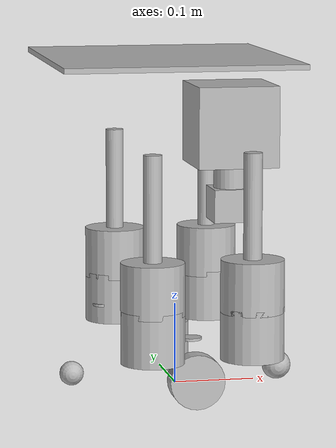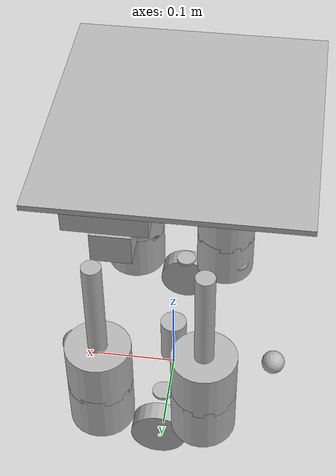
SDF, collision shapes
<?xml version="1.0" ?>
<sdf version="1.5">
  <model name="turtlebot_with_sensors_b">
    <link name="rack">
      <inertial>
        <pose>0.001453 -0.000453 0.029787 0 0 0</pose>
        <inertia>
          <ixx>0.058640</ixx>
          <ixy>0.000124</ixy>
          <ixz>0.000615</ixz>
          <iyy>0.058786</iyy>
          <iyz>0.000014</iyz>
          <izz>1.532440</izz>
        </inertia>
        <mass>2.234000</mass>
      </inertial>
      <visual name="plate_0_visual">
        <pose>-0.043340 0 0.084757 0 0 0</pose>
        <geometry>
          <mesh>
            <uri>model://turtlebot_with_sensors/meshes/plate_0_logo_b.dae</uri>
          </mesh>
        </geometry>
      </visual>
      <visual name="plate_1_visual">
        <pose>-0.002660 0 0.141907 0 0 0</pose>
        <geometry>
          <mesh>
            <uri>model://turtlebot_with_sensors/meshes/plate_1_logo_b.dae</uri>
          </mesh>
        </geometry>
      </visual>
      <visual name="plate_2_visual">
        <pose>-0.002660 0 0.199108 0 0 0</pose>
        <geometry>
          <mesh>
            <uri>model://turtlebot_with_sensors/meshes/plate_1_logo_b.dae</uri>
          </mesh>
        </geometry>
      </visual>
      <collision name="plate_3_collision">
        <pose>-0.015820 0 0.405457 0 0 0</pose>
        <geometry>
          <box>
            <size>0.288000 0.315000 0.006401</size>
          </box>
        </geometry>
      </collision>
      <visual name="plate_3_visual">
        <pose>-0.015820 0 0.405457 0 0 0</pose>
        <geometry>
          <mesh>
            <uri>model://turtlebot_with_sensors/meshes/plate_2_logo_b.dae</uri>
          </mesh>
        </geometry>
      </visual>
      <collision name="spacer_0_collision">
        <pose>-0.002540 0.111468 0.079992 0 0 0</pose>
        <geometry>
          <cylinder>
            <radius>0.012700</radius>
            <length>0.003175</length>
          </cylinder>
        </geometry>
      </collision>
      <visual name="spacer_0_visual">
        <pose>-0.002540 0.111468 0.079992 0 0 0</pose>
        <geometry>
          <mesh>
            <uri>model://turtlebot_with_sensors/meshes/68-02403-125_Spacer.dae</uri>
          </mesh>
        </geometry>
      </visual>
      <collision name="spacer_1_collision">
        <pose>-0.002540 -0.111468 0.079992 0 0 0</pose>
        <geometry>
          <cylinder>
            <radius>0.012700</radius>
            <length>0.003175</length>
          </cylinder>
        </geometry>
      </collision>
      <visual name="spacer_1_visual">
        <pose>-0.002540 -0.111468 0.079992 0 0 0</pose>
        <geometry>
          <mesh>
            <uri>model://turtlebot_with_sensors/meshes/68-02403-125_Spacer.dae</uri>
          </mesh>
        </geometry>
      </visual>
      <collision name="spacer_2_collision">
        <pose>-0.072390 -0.111468 0.079992 0 0 0</pose>
        <geometry>
          <cylinder>
            <radius>0.012700</radius>
            <length>0.003175</length>
          </cylinder>
        </geometry>
      </collision>
      <visual name="spacer_2_visual">
        <pose>-0.072390 -0.111468 0.079992 0 0 0</pose>
        <geometry>
          <mesh>
            <uri>model://turtlebot_with_sensors/meshes/68-02403-125_Spacer.dae</uri>
          </mesh>
        </geometry>
      </visual>
      <collision name="spacer_3_collision">
        <pose>-0.072390 0.111468 0.079992 0 0 0</pose>
        <geometry>
          <cylinder>
            <radius>0.012700</radius>
            <length>0.003175</length>
          </cylinder>
        </geometry>
      </collision>
      <visual name="spacer_3_visual">
        <pose>-0.072390 0.111468 0.079992 0 0 0</pose>
        <geometry>
          <mesh>
            <uri>model://turtlebot_with_sensors/meshes/68-02403-125_Spacer.dae</uri>
          </mesh>
        </geometry>
      </visual>
      <collision name="standoff_2in_0_collision">
        <pose>0.067640 0.131420 0.087980 0 0 0</pose>
        <geometry>
          <cylinder>
            <radius>0.038100</radius>
            <length>0.063500</length>
          </cylinder>
        </geometry>
      </collision>
      <visual name="standoff_2in_0_visual">
        <pose>0.067640 0.131420 0.087980 0 0 0</pose>
        <geometry>
          <mesh>
            <uri>model://turtlebot_with_sensors/meshes/68-04552-2000-RA_Turtlebot_M-F_Standoff.dae</uri>
          </mesh>
        </geometry>
      </visual>
      <collision name="standoff_2in_1_collision">
        <pose>0.067640 -0.131420 0.087980 0 0 0</pose>
        <geometry>
          <cylinder>
            <radius>0.038100</radius>
            <length>0.063500</length>
          </cylinder>
        </geometry>
      </collision>
      <visual name="standoff_2in_1_visual">
        <pose>0.067640 -0.131420 0.087980 0 0 0</pose>
        <geometry>
          <mesh>
            <uri>model://turtlebot_with_sensors/meshes/68-04552-2000-RA_Turtlebot_M-F_Standoff.dae</uri>
          </mesh>
        </geometry>
      </visual>
      <collision name="standoff_2in_2_collision">
        <pose>-0.052832 -0.131420 0.087980 0 0 0</pose>
        <geometry>
          <cylinder>
            <radius>0.038100</radius>
            <length>0.063500</length>
          </cylinder>
        </geometry>
      </collision>
      <visual name="standoff_2in_2_visual">
        <pose>-0.052832 -0.131420 0.087980 0 0 0</pose>
        <geometry>
          <mesh>
            <uri>model://turtlebot_with_sensors/meshes/68-04552-2000-RA_Turtlebot_M-F_Standoff.dae</uri>
          </mesh>
        </geometry>
      </visual>
      <collision name="standoff_2in_3_collision">
        <pose>-0.052832 0.131420 0.087980 0 0 0</pose>
        <geometry>
          <cylinder>
            <radius>0.038100</radius>
            <length>0.063500</length>
          </cylinder>
        </geometry>
      </collision>
      <visual name="standoff_2in_3_visual">
        <pose>-0.052832 0.131420 0.087980 0 0 0</pose>
        <geometry>
          <mesh>
            <uri>model://turtlebot_with_sensors/meshes/68-04552-2000-RA_Turtlebot_M-F_Standoff.dae</uri>
          </mesh>
        </geometry>
      </visual>
      <collision name="standoff_2in_4_collision">
        <pose>0.067640 0.131420 0.145130 0 0 0</pose>
        <geometry>
          <cylinder>
            <radius>0.038100</radius>
            <length>0.063500</length>
          </cylinder>
        </geometry>
      </collision>
      <visual name="standoff_2in_4_visual">
        <pose>0.067640 0.131420 0.145130 0 0 0</pose>
        <geometry>
          <mesh>
            <uri>model://turtlebot_with_sensors/meshes/68-04552-2000-RA_Turtlebot_M-F_Standoff.dae</uri>
          </mesh>
        </geometry>
      </visual>
      <collision name="standoff_2in_5_collision">
        <pose>0.067640 -0.131420 0.145130 0 0 0</pose>
        <geometry>
          <cylinder>
            <radius>0.038100</radius>
            <length>0.063500</length>
          </cylinder>
        </geometry>
      </collision>
      <visual name="standoff_2in_5_visual">
        <pose>0.067640 -0.131420 0.145130 0 0 0</pose>
        <geometry>
          <mesh>
            <uri>model://turtlebot_with_sensors/meshes/68-04552-2000-RA_Turtlebot_M-F_Standoff.dae</uri>
          </mesh>
        </geometry>
      </visual>
      <collision name="standoff_2in_6_collision">
        <pose>-0.052832 -0.131420 0.145130 0 0 0</pose>
        <geometry>
          <cylinder>
            <radius>0.038100</radius>
            <length>0.063500</length>
          </cylinder>
        </geometry>
      </collision>
      <visual name="standoff_2in_6_visual">
        <pose>-0.052832 -0.131420 0.145130 0 0 0</pose>
        <geometry>
          <mesh>
            <uri>model://turtlebot_with_sensors/meshes/68-04552-2000-RA_Turtlebot_M-F_Standoff.dae</uri>
          </mesh>
        </geometry>
      </visual>
      <collision name="standoff_2in_7_collision">
        <pose>-0.052832 0.131420 0.145130 0 0 0</pose>
        <geometry>
          <cylinder>
            <radius>0.038100</radius>
            <length>0.063500</length>
          </cylinder>
        </geometry>
      </collision>
      <visual name="standoff_2in_7_visual">
        <pose>-0.052832 0.131420 0.145130 0 0 0</pose>
        <geometry>
          <mesh>
            <uri>model://turtlebot_with_sensors/meshes/68-04552-2000-RA_Turtlebot_M-F_Standoff.dae</uri>
          </mesh>
        </geometry>
      </visual>
      <collision name="standoff_8in_0_collision">
        <pose>0.067640 0.131420 0.202280 0 0 0</pose>
        <geometry>
          <cylinder>
            <radius>0.011113</radius>
            <length>0.203200</length>
          </cylinder>
        </geometry>
      </collision>
      <visual name="standoff_8in_0_visual">
        <pose>0.067640 0.131420 0.202280 0 0 0</pose>
        <geometry>
          <mesh>
            <uri>model://turtlebot_with_sensors/meshes/68-02421-8000-RA_Turtlebot_F-F_Standoff.dae</uri>
          </mesh>
        </geometry>
      </visual>
      <collision name="standoff_8in_1_collision">
        <pose>0.067640 -0.131420 0.202280 0 0 0</pose>
        <geometry>
          <cylinder>
            <radius>0.011113</radius>
            <length>0.203200</length>
          </cylinder>
        </geometry>
      </collision>
      <visual name="standoff_8in_1_visual">
        <pose>0.067640 -0.131420 0.202280 0 0 0</pose>
        <geometry>
          <mesh>
            <uri>model://turtlebot_with_sensors/meshes/68-02421-8000-RA_Turtlebot_F-F_Standoff.dae</uri>
          </mesh>
        </geometry>
      </visual>
      <collision name="standoff_8in_2_collision">
        <pose>-0.052832 -0.131420 0.202280 0 0 0</pose>
        <geometry>
          <cylinder>
            <radius>0.011113</radius>
            <length>0.203200</length>
          </cylinder>
        </geometry>
      </collision>
      <visual name="standoff_8in_2_visual">
        <pose>-0.052832 -0.131420 0.202280 0 0 0</pose>
        <geometry>
          <mesh>
            <uri>model://turtlebot_with_sensors/meshes/68-02421-8000-RA_Turtlebot_F-F_Standoff.dae</uri>
          </mesh>
        </geometry>
      </visual>
      <collision name="standoff_8in_3_collision">
        <pose>-0.052832 0.131420 0.202280 0 0 0</pose>
        <geometry>
          <cylinder>
            <radius>0.011113</radius>
            <length>0.203200</length>
          </cylinder>
        </geometry>
      </collision>
      <visual name="standoff_8in_3_visual">
        <pose>-0.052832 0.131420 0.202280 0 0 0</pose>
        <geometry>
          <mesh>
            <uri>model://turtlebot_with_sensors/meshes/68-02421-8000-RA_Turtlebot_F-F_Standoff.dae</uri>
          </mesh>
        </geometry>
      </visual>
<!-- IMU Sensor -->
      <sensor name="imu_sensor" type="imu">
        <pose>0 0 0 0 0 0</pose>
        <always_on>1</always_on>
        <update_rate>100</update_rate>
        <imu>
        </imu>
      </sensor>
<!-- GPS sensor copied from gazebo-5.0.1/test/worlds/gps_test.world -->
      <sensor name="gps" type="gps">
        <pose>0 0 0 0 0 0</pose>
        <update_rate>10.0</update_rate>
        <always_on>true</always_on>
        <gps>
          <position_sensing>
            <horizontal>
              <noise type="gaussian_quantized">
                <mean>0</mean>
                <stddev>1</stddev>
                <bias_mean>3</bias_mean>
                <bias_stddev>1</bias_stddev>
                <precision>0.5</precision>
              </noise>
            </horizontal>
            <vertical>
              <noise type="gaussian_quantized">
                <mean>0</mean>
                <stddev>1</stddev>
                <bias_mean>3</bias_mean>
                <bias_stddev>1</bias_stddev>
                <precision>1.0</precision>
              </noise>
            </vertical>
          </position_sensing>
          <velocity_sensing>
            <horizontal>
              <noise type="gaussian_quantized">
                <mean>0</mean>
                <stddev>0.1</stddev>
                <bias_mean>0.1</bias_mean>
                <bias_stddev>0.1</bias_stddev>
                <precision>0.1</precision>
              </noise>
            </horizontal>
            <vertical>
              <noise type="gaussian_quantized">
                <mean>0</mean>
                <stddev>0.2</stddev>
                <bias_mean>0.2</bias_mean>
                <bias_stddev>0.2</bias_stddev>
                <precision>0.2</precision>
              </noise>
            </vertical>
          </velocity_sensing>
        </gps>
      </sensor>
    </link>
<!-- Camera (hight is 100mm) -->
    <include>
      <name>camera</name>
      <pose>0.07 0 0.323 0 0 0</pose>
      <uri>model://camera_rc2016</uri>
    </include>
    <joint name="camera_joint" type="revolute">
      <parent>rack</parent>
      <child>camera::link</child>
      <pose>0 0 0 0 0 0</pose>
      <axis>
        <xyz>0.000000 0.000000 1.000000</xyz>
        <limit>
          <lower>0</lower>
          <upper>0</upper>
        </limit>
      </axis>
    </joint>
<!-- Hokuyo (hight is 70mm) -->
    <include>
      <name>hokuyo</name>
      <pose>0.07 0 0.238 0 0 0</pose>
      <uri>model://hokuyo_rc2016</uri>
    </include>
    <joint name="hokuyo_joint" type="revolute">
      <parent>rack</parent>
      <child>hokuyo::link</child>
      <pose>0 0 0 0 0 0</pose>
      <axis>
        <xyz>0.000000 0.000000 1.000000</xyz>
        <limit>
          <lower>0</lower>
          <upper>0</upper>
        </limit>
      </axis>
    </joint>
    <include>
      <uri>model://create_rc2016</uri>
    </include>
    <joint name="create_rack" type="revolute">
      <parent>create_rc2016::base</parent>
      <child>rack</child>
      <axis>
        <xyz>0 0 1</xyz>
        <limit>
          <lower>0</lower>
          <upper>0</upper>
        </limit>
        <use_parent_model_frame>true</use_parent_model_frame>
      </axis>
    </joint>
  </model>
</sdf>

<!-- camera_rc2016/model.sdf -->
<sdf version="1.5">
  <model name="camera_rc2016">
    <pose>0 0 0.05 0 0 0</pose>
    <link name="link">
      <inertial>
        <mass>0.1</mass>
        <inertia>
          <ixx>0.000166667</ixx>
          <iyy>0.000166667</iyy>
          <izz>0.000166667</izz>
        </inertia>
      </inertial>
      <collision name="collision">
        <geometry>
          <box>
            <size>0.1 0.1 0.1</size>
          </box>
        </geometry>
      </collision>
      <visual name="visual">
        <geometry>
          <box>
            <size>0.1 0.1 0.1</size>
          </box>
        </geometry>
      </visual>
      <sensor name="camera" type="camera">
        <camera>
          <horizontal_fov>1.047</horizontal_fov>
          <image>
            <width>320</width>
            <height>240</height>
          </image>
          <clip>
            <near>0.1</near>
            <far>100</far>
          </clip>
        </camera>
        <always_on>1</always_on>
        <update_rate>30</update_rate>
        <visualize>true</visualize>
      </sensor>
    </link>
  </model>
</sdf>

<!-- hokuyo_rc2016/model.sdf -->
<sdf version="1.5">
  <model name="hokuyo_rc2016">
    <pose>0 0 0.035 0 0 0</pose>
    <link name="link">
      <inertial>
        <mass>0.1</mass>
      </inertial>
      <visual name="visual">
        <geometry>
          <mesh>
            <uri>model://hokuyo_rc2016/meshes/hokuyo.dae</uri>
          </mesh>
        </geometry>
      </visual>
      <collision name="collision-base">
        <pose>0 0 -0.0145 0 0 0</pose>
        <geometry>
          <box>
            <size>0.05 0.05 0.041</size>
          </box>
        </geometry>
      </collision>
      <collision name="collision-top">
        <pose>0 0 0.0205 0 0 0</pose>
        <geometry>
          <cylinder>
            <radius>0.021</radius>
            <length>0.029</length>
          </cylinder>
        </geometry>
      </collision>
      <sensor name="lms200" type="ray">
        <pose>0.01 0 0.0175 0 -0 0</pose>
        <ray>
          <scan>
            <horizontal>
              <samples>181</samples>
              <resolution>1</resolution>
              <min_angle>-1.570796</min_angle>
              <max_angle>1.570796</max_angle>
            </horizontal>
          </scan>
          <range>
            <min>0.08</min>
            <max>10</max>
            <resolution>0.01</resolution>
          </range>
        </ray>
        <plugin name="laser" filename="libRayPlugin.so" />
        <always_on>1</always_on>
        <update_rate>30</update_rate>
        <visualize>true</visualize>
      </sensor>
    </link>
  </model>
</sdf>

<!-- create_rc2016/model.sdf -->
<sdf version="1.5">
  <model name="create_rc2016">
    <link name="base">
      <inertial>
        <pose>0.001453 -0.000453 0.029787 0 0 0</pose>
        <inertia>
          <ixx>0.058640</ixx>
          <ixy>0.000124</ixy>
          <ixz>0.000615</ixz>
          <iyy>0.058786</iyy>
          <iyz>0.000014</iyz>
          <izz>1.532440</izz>
        </inertia>
        <mass>2.234000</mass>
      </inertial>
      <collision name="base_collision">
        <pose>0 0 0.047800 0 0 0</pose>
        <geometry>
          <cylinder>
            <radius>0.016495</radius>
            <length>0.061163</length>
          </cylinder>
        </geometry>
      </collision>
      <visual name="base_visual">
        <pose>0 0 0.047800 0 0 0</pose>
        <geometry>
          <mesh>
            <uri>model://create_rc2016/meshes/create_body.dae</uri>
          </mesh>
        </geometry>
      </visual>
      <collision name="front_wheel_collision">
        <pose>0.130000 0 0.017000 0 1.570700 1.570700</pose>
        <geometry>
          <sphere>
            <radius>0.018000</radius>
          </sphere>
        </geometry>
        <surface>
          <friction>
            <ode>
              <mu>0</mu>
              <mu2>0</mu2>
              <fdir1>0 0 0</fdir1>
              <slip1>0</slip1>
              <slip2>0</slip2>
            </ode>
          </friction>
        </surface>
      </collision>
      <visual name="front_wheel_visual">
        <pose>0.130000 0 0.017000 0 1.570700 1.570700</pose>
        <geometry>
          <sphere>
            <radius>0.009000</radius>
          </sphere>
        </geometry>
      </visual>
      <collision name="rear_wheel_collision">
        <pose>-0.13 0 0.017 0 1.5707 1.5707</pose>
        <geometry>
          <sphere>
            <radius>0.015000</radius>
          </sphere>
        </geometry>
        <surface>
          <friction>
            <ode>
              <mu>0</mu>
              <mu2>0</mu2>
              <fdir1>0 0 0</fdir1>
              <slip1>0</slip1>
              <slip2>0</slip2>
            </ode>
          </friction>
        </surface>
      </collision>
      <visual name="rear_wheel_visual">
        <pose>-0.130000 0 0.017000 0 1.570700 1.570700</pose>
        <geometry>
          <sphere>
            <radius>0.007500</radius>
          </sphere>
        </geometry>
      </visual>
      <sensor name="left_cliff_sensor" type="ray">
        <pose>0.070000 0.140000 0.027000 0 1.570790 0</pose>
        <ray>
          <scan>
            <horizontal>
              <samples>1</samples>
              <resolution>1.000000</resolution>
              <min_angle>0</min_angle>
              <max_angle>0</max_angle>
            </horizontal>
          </scan>
          <range>
            <min>0.010000</min>
            <max>0.040000</max>
            <resolution>0.100000</resolution>
          </range>
        </ray>
      </sensor>
      <sensor name="leftfront_cliff_sensor" type="ray">
        <pose>0.150000 0.040000 0.027000 0 1.570790 0</pose>
        <ray>
          <scan>
            <horizontal>
              <samples>1</samples>
              <resolution>1.000000</resolution>
              <min_angle>0</min_angle>
              <max_angle>0</max_angle>
            </horizontal>
          </scan>
          <range>
            <min>0.010000</min>
            <max>0.040000</max>
            <resolution>0.100000</resolution>
          </range>
        </ray>
      </sensor>
      <sensor name="right_cliff_sensor" type="ray">
        <pose>0.070000 -0.140000 0.027000 0 1.570790 0</pose>
        <ray>
          <scan>
            <horizontal>
              <samples>1</samples>
              <resolution>1.000000</resolution>
              <min_angle>0</min_angle>
              <max_angle>0</max_angle>
            </horizontal>
          </scan>
          <range>
            <min>0.010000</min>
            <max>0.040000</max>
            <resolution>0.100000</resolution>
          </range>
        </ray>
      </sensor>
      <sensor name="rightfront_cliff_sensor" type="ray">
        <pose>0.150000 -0.040000 0.027000 0 1.570790 0</pose>
        <ray>
          <scan>
            <horizontal>
              <samples>1</samples>
              <resolution>1.000000</resolution>
              <min_angle>0</min_angle>
              <max_angle>0</max_angle>
            </horizontal>
          </scan>
          <range>
            <min>0.010000</min>
            <max>0.040000</max>
            <resolution>0.100000</resolution>
          </range>
        </ray>
      </sensor>
      <sensor name="wall_sensor" type="ray">
        <pose>0.090000 -0.120000 0.059000 0 0 -1.000000</pose>
        <ray>
          <scan>
            <horizontal>
              <samples>1</samples>
              <resolution>1.000000</resolution>
              <min_angle>0</min_angle>
              <max_angle>0</max_angle>
            </horizontal>
          </scan>
          <range>
            <min>0.016000</min>
            <max>0.040000</max>
            <resolution>0.100000</resolution>
          </range>
        </ray>
      </sensor>
    </link>
    <link name="left_wheel">
      <pose>0 0.130000 0.032000 0 0 0</pose>
      <inertial>
        <inertia>
          <ixx>0.001000</ixx>
          <ixy>0</ixy>
          <ixz>0</ixz>
          <iyy>0.001000</iyy>
          <iyz>0</iyz>
          <izz>0.001000</izz>
        </inertia>
        <mass>0.010000</mass>
      </inertial>
      <collision name="collision">
        <pose>0 0 0 0 1.570700 1.570700</pose>
        <geometry>
          <cylinder>
            <radius>0.033000</radius>
            <length>0.023000</length>
          </cylinder>
        </geometry>
        <surface>
          <friction>
            <ode>
              <mu>10</mu>
              <mu2>10</mu2>
              <fdir1>0 0 0</fdir1>
              <slip1>0</slip1>
              <slip2>0</slip2>
            </ode>
          </friction>
        </surface>
      </collision>
      <visual name="visual">
        <pose>0 0 0 0 1.570700 1.570700</pose>
        <geometry>
          <cylinder>
            <radius>0.033000</radius>
            <length>0.023000</length>
          </cylinder>
        </geometry>
      </visual>
    </link>
    <link name="right_wheel">
      <pose>0 -0.130000 0.032000 0 0 0</pose>
      <inertial>
        <inertia>
          <ixx>0.001000</ixx>
          <ixy>0</ixy>
          <ixz>0</ixz>
          <iyy>0.001000</iyy>
          <iyz>0</iyz>
          <izz>0.001000</izz>
        </inertia>
        <mass>0.010000</mass>
      </inertial>
      <collision name="collision">
        <pose>0 0 0 0 1.570700 1.570700</pose>
        <geometry>
          <cylinder>
            <radius>0.033000</radius>
            <length>0.023000</length>
          </cylinder>
        </geometry>
        <surface>
          <friction>
            <ode>
              <mu>10</mu>
              <mu2>10</mu2>
              <fdir1>0 0 0</fdir1>
              <slip1>0</slip1>
              <slip2>0</slip2>
            </ode>
          </friction>
        </surface>
      </collision>
      <visual name="visual">
        <pose>0 0 0 0 1.570700 1.570700</pose>
        <geometry>
          <cylinder>
            <radius>0.033000</radius>
            <length>0.023000</length>
          </cylinder>
        </geometry>
      </visual>
    </link>
    <joint name="left_wheel" type="revolute">
      <parent>base</parent>
      <child>left_wheel</child>
      <axis>
        <xyz>0 1 0</xyz>
        <use_parent_model_frame>true</use_parent_model_frame>
      </axis>
    </joint>
    <joint name="right_wheel" type="revolute">
      <parent>base</parent>
      <child>right_wheel</child>
      <axis>
        <xyz>0 1 0</xyz>
        <use_parent_model_frame>true</use_parent_model_frame>
      </axis>
    </joint>
    <plugin filename="libDiffDrivePlugin.so" name="diff_drive">
      <left_joint>left_wheel</left_joint>
      <right_joint>right_wheel</right_joint>
      <torque>5</torque>
    </plugin>
  </model>
</sdf>
